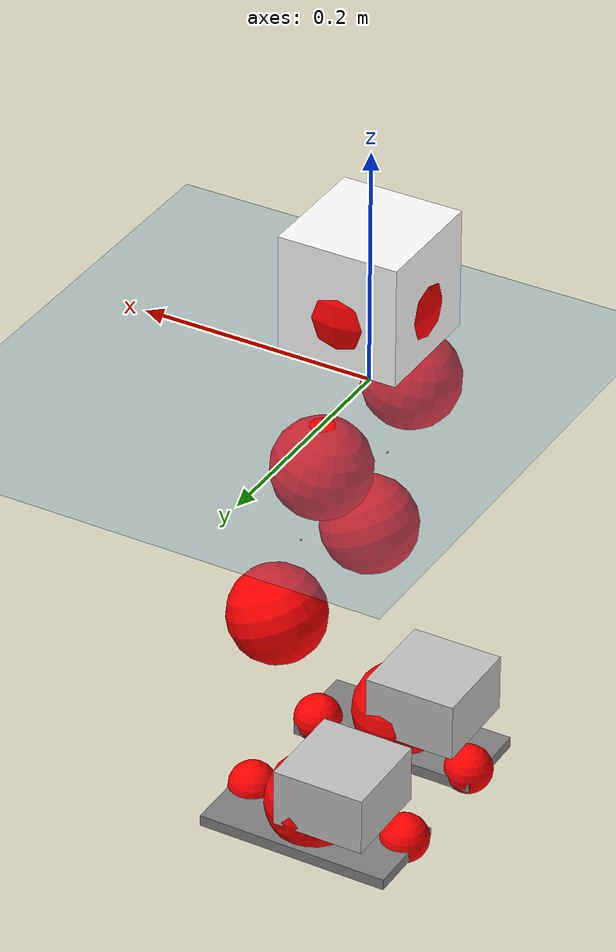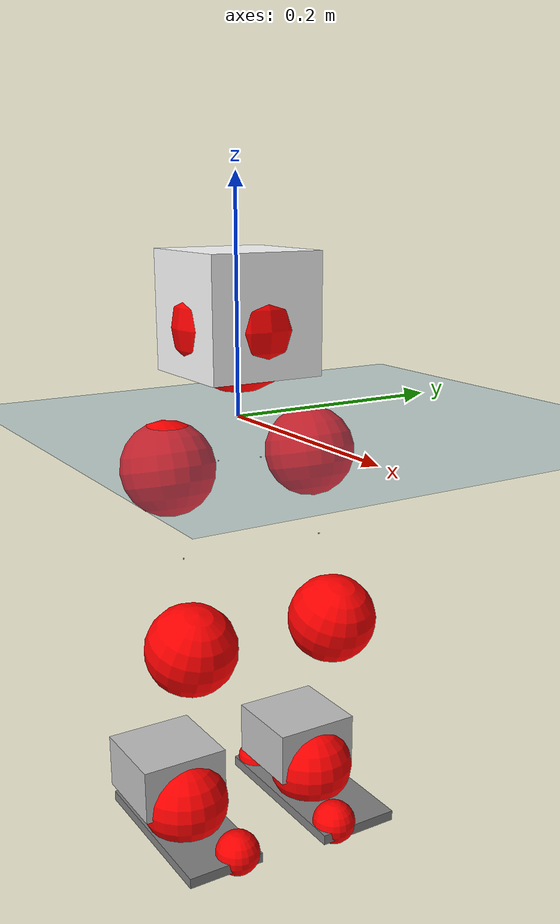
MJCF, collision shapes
<mujoco model="pi_12dof_release_v1">
  <compiler angle="radian" assetdir="assets" balanceinertia="true" inertiafromgeom="false"/>

  <option timestep="0.005" density="1.2" viscosity="2e-05"/>

  <size nkey="1"/>

  <visual>
    <quality shadowsize="8192"/>
    <map shadowclip="0.5"/>
  </visual>

  <default>
    <default class="/">
      <joint armature="0.01" damping="0.01" frictionloss="0.01"/>
      <geom contype="0" conaffinity="0" group="1" solref="-1000 -80"/>
      <site size="0.01 0.005 0.005" group="5"/>
      <general forcelimited="true" biastype="affine" gainprm="20" biasprm="0 -20 -0.5"/>
      <default class="foot">
        <geom size="0.0845 0.036 0.005" type="box" condim="6" group="4" priority="1" friction="0.9 0.2 0.2" solimp="0.015 1 0.005"/>
      </default>
      <default class="reward_collision_sphere">
        <geom group="5" rgba="1 0 0 1"/>
      </default>
    </default>
  </default>

  <asset>
    <texture type="skybox" colorspace="auto" name="//unnamed_texture_0" builtin="gradient" rgb1="0.95 0.95 0.95" rgb2="0.95 0.95 0.95" width="100" height="600"/>
    <texture type="2d" colorspace="auto" name="texplane" builtin="checker" rgb1="0.345 0.575 0.748" rgb2="0.345 0.575 0.748" markrgb="1 1 1" width="512" height="512"/>
    <material name="MatPlane" class="/" texture="texplane" texuniform="true" texrepeat="2 2" specular="0.9"/>
    <mesh name="baselink_1" class="/" file="baselink_1.STL"/>
    <mesh name="r_hip_pitch_link" class="/" file="r_hip_pitch_link.STL"/>
    <mesh name="r_hip_roll_link" class="/" file="r_hip_roll_link.STL"/>
    <mesh name="r_thigh_link" class="/" file="r_thigh_link.STL"/>
    <mesh name="r_calf_link" class="/" file="r_calf_link.STL"/>
    <mesh name="r_ankle_pitch_link" class="/" file="r_ankle_pitch_link.STL"/>
    <mesh name="r_ankle_roll_link" class="/" file="r_ankle_roll_link.STL"/>
    <mesh name="l_hip_pitch_link" class="/" file="l_hip_pitch_link.STL"/>
    <mesh name="l_hip_roll_link" class="/" file="l_hip_roll_link.STL"/>
    <mesh name="l_thigh_link" class="/" file="l_thigh_link.STL"/>
    <mesh name="l_calf_link" class="/" file="l_calf_link.STL"/>
    <mesh name="l_ankle_pitch_link" class="/" file="l_ankle_pitch_link.STL"/>
    <mesh name="l_ankle_roll_link" class="/" file="l_ankle_roll_link.STL"/>
  </asset>

  <worldbody>
    <geom name="floor" class="/" size="100 100 0.125" type="plane" group="0" material="MatPlane"/>
    <light name="toplight_shadow" class="/" pos="0 0 5" dir="0.0990148 0.0990148 -0.990148" type="directional" ambient="0.04 0.04 0.04" diffuse="0.55 0.55 0.55" specular="0.12 0.12 0.12"/>
    <light name="toplight_fill" class="/" pos="0 0 5" dir="0.0990148 0.0990148 -0.990148" type="directional" castshadow="false" ambient="0.04 0.04 0.04" diffuse="0.3 0.3 0.3" specular="0.08 0.08 0.08"/>
    <body name="trunk" pos="0.000537419 4.96645e-05 -0.000966025" quat="1 9.61389e-05 -0.00039885 -0.000252837">
      <inertial pos="7.87059e-05 -0.00222894 0.0458217" quat="0.695978 0.0103188 0.00898647 0.717933" mass="2.32452" diaginertia="0.0116963 0.00532491 0.00712342"/>
      <joint name="//unnamed_joint_0" type="free"/>
      <geom name="//unnamed_geom_1" class="/" type="mesh" density="0" rgba="1 1 1 1" mesh="baselink_1"/>
      <geom name="//unnamed_geom_2" class="/" size="0.0507712 0.0507712 0.0507712" pos="0 0 0.0890029" type="box" rgba="1 1 1 1"/>
      <geom name="//unnamed_geom_3" class="reward_collision_sphere" size="0.0558483" pos="0 0 0.0778775"/>
      <site name="imu" class="/" pos="0.0087124 -4.65913e-05 -0.00862271" size="0.0101542"/>
      <camera name="track" class="/" pos="0 -1.79743 0" quat="0.707107 0.707107 0 0" mode="trackcom"/>
      <camera name="ego_camera" class="/" pos="0.0776266 0 0.200256" quat="-0.5 -0.5 0.5 0.5"/>
      <body name="r_hip_pitch_link" pos="-0.000532792 -0.0205553 -0.0359444" quat="0.992196 -5.93881e-05 -0.124689 -6.14062e-05">
        <inertial pos="0.000922949 -0.051195 5.62689e-05" quat="-0.0192894 0.705672 -0.028078 0.70772" mass="0.37279" diaginertia="0.000124897 5.52393e-05 0.000137374"/>
        <joint name="r_hip_pitch_joint" class="/" pos="0 0 0" axis="0.00510751 -0.999986 0.00143187" range="-1.73655 1.21044" armature="0.00948025" damping="0.0129909" frictionloss="0.010663"/>
        <geom name="//unnamed_geom_4" class="/" type="mesh" density="0" rgba="0.75294 0.75294 0.75294 1" mesh="r_hip_pitch_link"/>
        <geom name="//unnamed_geom_5" class="/" size="0.000507712 0.000507712 0.000507712" type="box" rgba="0.75294 0.75294 0.75294 1"/>
        <body name="r_hip_roll_link" pos="0.000751061 -0.0480339 -0.000232032" quat="1 -0.000271944 0.000652573 6.36975e-05">
          <inertial pos="-0.000592985 -0.000112699 -0.0690029" quat="0.707577 -0.0810168 -0.0811337 0.697272" mass="0.403421" diaginertia="0.000395184 0.00015781 0.000215417"/>
          <joint name="r_hip_roll_joint" class="/" pos="0 0 0" axis="-0.999999 0.000701079 -0.000716915" stiffness="0.000910988" range="-0.109839 0.494888" armature="0.010282" damping="0" frictionloss="0.0111103"/>
          <geom name="//unnamed_geom_6" class="/" type="mesh" density="0" rgba="0.75294 0.75294 0.75294 1" mesh="r_hip_roll_link"/>
          <geom name="//unnamed_geom_7" class="/" size="0.000507712 0.000507712 0.000507712" type="box" rgba="0.75294 0.75294 0.75294 1"/>
          <geom name="//unnamed_geom_8" class="reward_collision_sphere" size="0.0406169"/>
          <body name="r_thigh_link" pos="0.000420023 0.00219792 -0.077095" quat="1 -1.49926e-05 -0.00028379 -0.000162434">
            <inertial pos="-5.72613e-05 -8.06122e-05 -0.0519697" quat="0.737114 0.675766 -3.25357e-05 -0.00159599" mass="0.117946" diaginertia="0.000146182 5.57401e-05 9.83541e-05"/>
            <joint name="r_thigh_joint" class="/" pos="0 0 0" axis="0.000269593 0.000111398 -1" range="-0.307537 0.604871" armature="0.0111568" damping="0.00888797" frictionloss="0.00974058"/>
            <geom name="//unnamed_geom_9" class="/" type="mesh" density="0" rgba="0.75294 0.75294 0.75294 1" mesh="r_thigh_link"/>
            <geom name="//unnamed_geom_10" class="/" size="0.000507712 0.000507712 0.000507712" type="box" rgba="0.75294 0.75294 0.75294 1"/>
            <body name="r_calf_link" pos="-0.0015857 -0.00369681 -0.0780964" quat="0.947637 5.09122e-05 0.31935 -1.00452e-05">
              <inertial pos="-0.000351321 -0.00325236 -0.0776646" quat="0.999922 -0.0070104 0.00970591 0.00354807" mass="0.850418" diaginertia="0.00415455 0.00210172 0.000296562"/>
              <joint name="r_calf_joint" class="/" pos="0 0 0" axis="0.00136549 -0.999999 0.000747815" stiffness="0.000520368" range="-1.65272 0.627704" armature="0.0106432" damping="0.0131213" frictionloss="0.0103657"/>
              <geom name="//unnamed_geom_11" class="/" type="mesh" density="0" rgba="0.75294 0.75294 0.75294 1" mesh="r_calf_link"/>
              <geom name="//unnamed_geom_12" class="/" size="0.000507712 0.000507712 0.000507712" type="box" rgba="0.75294 0.75294 0.75294 1"/>
              <geom name="//unnamed_geom_13" class="reward_collision_sphere" size="0.0406169"/>
              <body name="r_ankle_pitch_link" pos="0.000321647 0.00137736 -0.156899" quat="0.980171 5.64881e-06 -0.198156 0.000323564">
                <inertial pos="0.0066379 0.00366931 0.000305223" quat="0.002571 0.705726 -0.00111718 0.708479" mass="0.185729" diaginertia="0.000366267 0.000128259 0.000208564"/>
                <joint name="r_ankle_pitch_joint" class="/" pos="0 0 0" axis="0.00168866 -0.999999 0.000338845" range="-1.27076 0.500336" armature="0.00993328" damping="0.00161226" frictionloss="0.0098874"/>
                <geom name="//unnamed_geom_14" class="/" type="mesh" density="0" rgba="0.75294 0.75294 0.75294 1" mesh="r_ankle_pitch_link"/>
                <geom name="//unnamed_geom_15" class="/" size="0.0396015 0.0406169 0.0253856" type="box" rgba="0.75294 0.75294 0.75294 1"/>
                <body name="r_ankle_roll_link" pos="0.0791515 0.00377721 -0.000122961" quat="1 -3.09336e-05 -0.000235683 -1.54205e-05">
                  <inertial pos="-0.0254991 0.000225047 -0.0162912" quat="0.557077 0.437734 0.437924 0.553422" mass="0.544605" diaginertia="0.00133904 0.000617214 0.000488369"/>
                  <joint name="r_ankle_roll_joint" class="/" pos="0 0 0" axis="-0.999998 0.00199128 -0.000129863" range="-0.152455 0.142827" armature="0.0111074" damping="0.00624796" frictionloss="0.00985939"/>
                  <geom name="//unnamed_geom_16" class="/" type="mesh" density="0" rgba="0.75294 0.75294 0.75294 1" mesh="r_ankle_roll_link"/>
                  <geom name="//unnamed_geom_17" class="/" type="mesh" rgba="0.75294 0.75294 0.75294 1" mesh="r_ankle_roll_link"/>
                  <geom name="right_foot" class="foot" size="0.08117 0.0358614 0.00479899" pos="-0.0527861 0 -0.0489516"/>
                  <geom name="//unnamed_geom_19" class="reward_collision_sphere" size="0.0406169" pos="-0.0517511 0 -0.0222507"/>
                  <geom name="//unnamed_geom_20" class="reward_collision_sphere" size="0.0203085" pos="0.0155253 0.0179743 -0.0445014"/>
                  <geom name="//unnamed_geom_21" class="reward_collision_sphere" size="0.0203085" pos="-0.124203 0.0179743 -0.0445014"/>
                  <site name="right_foot" class="foot" pos="-0.0527861 0 -0.0489516" size="0.0101542"/>
                </body>
              </body>
            </body>
          </body>
        </body>
      </body>
      <body name="l_hip_pitch_link" pos="0.00111593 0.0208775 -0.0379738" quat="0.992199 -1.03111e-05 -0.124661 -2.28035e-05">
        <inertial pos="0.000671495 0.048241 -0.00218844" quat="-0.0347975 0.706066 0.0283763 0.706721" mass="0.417897" diaginertia="0.000160507 6.32412e-05 0.00017718"/>
        <joint name="l_hip_pitch_joint" class="/" pos="0 0 0" axis="-0.00169685 0.999996 0.00241543" range="-1.24709 1.75495" armature="0.0101094" damping="0.00924025" frictionloss="0.0101674"/>
        <geom name="//unnamed_geom_22" class="/" type="mesh" density="0" rgba="0.75294 0.75294 0.75294 1" mesh="l_hip_pitch_link"/>
        <geom name="//unnamed_geom_23" class="/" size="0.000507712 0.000507712 0.000507712" type="box" rgba="0.75294 0.75294 0.75294 1"/>
        <body name="l_hip_roll_link" pos="-0.00104231 0.0514678 -0.00029086" quat="1 -2.3098e-05 -0.000105072 0.000449103">
          <inertial pos="-0.00372781 -0.00102344 -0.0699227" quat="0.699048 -0.0757976 -0.0781146 0.706742" mass="0.41095" diaginertia="0.000384276 0.000162712 0.000215773"/>
          <joint name="l_hip_roll_joint" class="/" pos="0 0 0" axis="-0.999993 -0.00375015 0.000869664" range="-0.519373 0.124862" armature="0.0104202" damping="0.00878047" frictionloss="0.0104398"/>
          <geom name="//unnamed_geom_24" class="/" type="mesh" density="0" rgba="0.75294 0.75294 0.75294 1" mesh="l_hip_roll_link"/>
          <geom name="//unnamed_geom_25" class="/" size="0.000507712 0.000507712 0.000507712" type="box" rgba="0.75294 0.75294 0.75294 1"/>
          <geom name="//unnamed_geom_26" class="reward_collision_sphere" size="0.0406169"/>
          <body name="l_thigh_link" pos="4.0879e-05 -0.00137653 -0.0760678" quat="1 -4.55686e-05 -0.000129276 2.10108e-05">
            <inertial pos="-0.000471153 -0.000343758 -0.0517869" quat="0.675616 0.737253 0.00114413 0.000516743" mass="0.121572" diaginertia="0.000152641 5.79926e-05 0.000100481"/>
            <joint name="l_thigh_joint" class="/" pos="0 0 0" axis="0.00101787 -0.000316248 -0.999999" range="-0.63847 0.304223" armature="0.00969084" damping="0.00325961" frictionloss="0.0100228"/>
            <geom name="//unnamed_geom_27" class="/" type="mesh" density="0" rgba="0.75294 0.75294 0.75294 1" mesh="l_thigh_link"/>
            <geom name="//unnamed_geom_28" class="/" size="0.000507712 0.000507712 0.000507712" type="box" rgba="0.75294 0.75294 0.75294 1"/>
            <body name="l_calf_link" pos="0.00154879 0.000971913 -0.0788062" quat="0.947666 0.000276997 0.319265 0.00018343">
              <inertial pos="0.000910468 0.00204927 -0.0799378" quat="0.999868 0.0110812 0.00637187 0.0100397" mass="0.839024" diaginertia="0.00406505 0.00198931 0.000289932"/>
              <joint name="l_calf_joint" class="/" pos="0 0 0" axis="-0.00355889 0.999993 -0.000641954" range="-0.651731 1.63242" armature="0.010336" damping="0.000624063" frictionloss="0.00964575"/>
              <geom name="//unnamed_geom_29" class="/" type="mesh" density="0" rgba="0.75294 0.75294 0.75294 1" mesh="l_calf_link"/>
              <geom name="//unnamed_geom_30" class="/" size="0.000507712 0.000507712 0.000507712" type="box" rgba="0.75294 0.75294 0.75294 1"/>
              <geom name="//unnamed_geom_31" class="reward_collision_sphere" size="0.0406169"/>
              <body name="l_ankle_pitch_link" pos="0.00246055 -0.000524872 -0.157566" quat="0.980111 -0.000431758 -0.19845 0.000177801">
                <inertial pos="0.0047631 -0.00141609 -1.20127e-05" quat="-0.0022273 0.707091 0.00219615 0.707116" mass="0.183607" diaginertia="0.000364061 0.000129693 0.000203563"/>
                <joint name="l_ankle_pitch_joint" class="/" pos="0 0 0" axis="0.00165022 0.999999 0.000508844" range="-0.492089 1.30678" armature="0.0102109" damping="0.00963058" frictionloss="0.009645"/>
                <geom name="//unnamed_geom_32" class="/" type="mesh" density="0" rgba="0.75294 0.75294 0.75294 1" mesh="l_ankle_pitch_link"/>
                <geom name="//unnamed_geom_33" class="/" size="0.0396015 0.0406169 0.0253856" type="box" rgba="0.75294 0.75294 0.75294 1"/>
                <body name="l_ankle_roll_link" pos="0.076795 0.00119333 0.000129477" quat="1 5.63404e-06 -0.000814062 -0.00033808">
                  <inertial pos="-0.0247227 0.000348191 -0.016279" quat="0.560655 0.431394 0.431425 0.559855" mass="0.55153" diaginertia="0.00136425 0.000604896 0.00048807"/>
                  <joint name="l_ankle_roll_joint" class="/" pos="0 0 0" axis="-0.999998 0.00135501 -0.00119944" range="-0.130071 0.151518" armature="0.0106061" damping="0.0179825" frictionloss="0.00966804"/>
                  <geom name="//unnamed_geom_34" class="/" type="mesh" density="0" rgba="0.75294 0.75294 0.75294 1" mesh="l_ankle_roll_link"/>
                  <geom name="//unnamed_geom_35" class="/" type="mesh" rgba="0.75294 0.75294 0.75294 1" mesh="l_ankle_roll_link"/>
                  <geom name="left_foot" class="foot" size="0.0836265 0.0388273 0.00485161" pos="-0.0527861 0 -0.0489516"/>
                  <geom name="//unnamed_geom_37" class="reward_collision_sphere" size="0.0406169" pos="-0.0517511 0 -0.0222507"/>
                  <geom name="//unnamed_geom_38" class="reward_collision_sphere" size="0.0203085" pos="0.0155253 -0.0179743 -0.0445014"/>
                  <geom name="//unnamed_geom_39" class="reward_collision_sphere" size="0.0203085" pos="-0.124203 -0.0179743 -0.0445014"/>
                  <site name="left_foot" class="foot" pos="-0.0527861 0 -0.0489516" size="0.0101542"/>
                </body>
              </body>
            </body>
          </body>
        </body>
      </body>
    </body>
  </worldbody>

  <contact>
    <pair class="/" geom1="floor" geom2="right_foot" name="//unnamed_contact_1"/>
    <pair class="/" geom1="floor" geom2="left_foot" name="//unnamed_contact_0"/>
  </contact>

  <actuator>
    <general name="r_hip_pitch_joint" class="/" joint="r_hip_pitch_joint" forcerange="-22.0116 22.0116" gainprm="19.209" biasprm="0 -19.209 -0.514813"/>
    <general name="r_hip_roll_joint" class="/" joint="r_hip_roll_joint" forcerange="-21.3804 21.3804" gainprm="19.209" biasprm="0 -19.209 -0.514813"/>
    <general name="r_thigh_joint" class="/" joint="r_thigh_joint" forcerange="-21.7204 21.7204" gainprm="19.209" biasprm="0 -19.209 -0.514813"/>
    <general name="r_calf_joint" class="/" joint="r_calf_joint" forcerange="-22.6093 22.6093" gainprm="19.209" biasprm="0 -19.209 -0.514813"/>
    <general name="r_ankle_pitch_joint" class="/" joint="r_ankle_pitch_joint" forcerange="-21.5214 21.5214" gainprm="19.209" biasprm="0 -19.209 -0.514813"/>
    <general name="r_ankle_roll_joint" class="/" joint="r_ankle_roll_joint" forcerange="-20.8644 20.8644" gainprm="19.209" biasprm="0 -19.209 -0.514813"/>
    <general name="l_hip_pitch_joint" class="/" joint="l_hip_pitch_joint" forcerange="-20.874 20.874" gainprm="19.209" biasprm="0 -19.209 -0.514813"/>
    <general name="l_hip_roll_joint" class="/" joint="l_hip_roll_joint" forcerange="-19.8141 19.8141" gainprm="19.209" biasprm="0 -19.209 -0.514813"/>
    <general name="l_thigh_joint" class="/" joint="l_thigh_joint" forcerange="-22.0871 22.0871" gainprm="19.209" biasprm="0 -19.209 -0.514813"/>
    <general name="l_calf_joint" class="/" joint="l_calf_joint" forcerange="-21.0555 21.0555" gainprm="19.209" biasprm="0 -19.209 -0.514813"/>
    <general name="l_ankle_pitch_joint" class="/" joint="l_ankle_pitch_joint" forcerange="-21.46 21.46" gainprm="19.209" biasprm="0 -19.209 -0.514813"/>
    <general name="l_ankle_roll_joint" class="/" joint="l_ankle_roll_joint" forcerange="-21.4252 21.4252" gainprm="19.209" biasprm="0 -19.209 -0.514813"/>
  </actuator>

  <sensor>
    <gyro site="imu" name="imu_angular_velocity"/>
    <velocimeter site="imu" name="imu_linear_velocity"/>
    <framelinvel objtype="site" objname="left_foot" name="left_foot_global_linear_velocity"/>
    <framelinvel objtype="site" objname="right_foot" name="right_foot_global_linear_velocity"/>
  </sensor>

  <keyframe>
    <key name="home" qpos="0 0 0.291 1 0 0 0 0.4 0 0 -0.8 0.4 0 -0.4 0 0 0.8 -0.4 0"/>
  </keyframe>
</mujoco>
